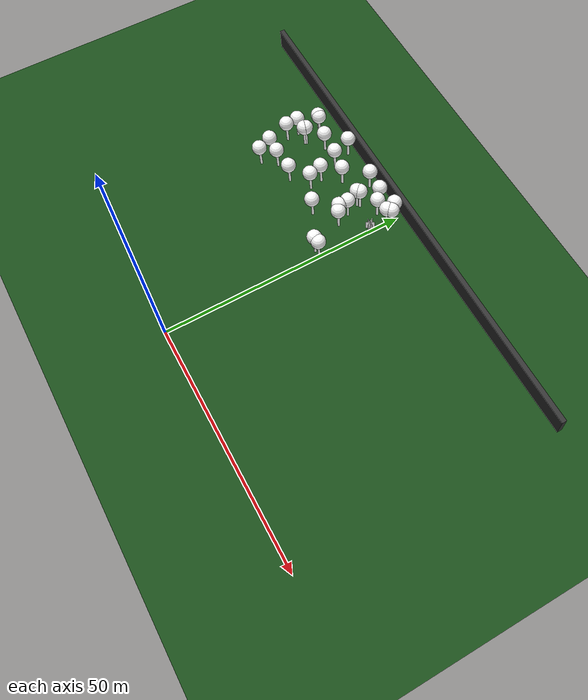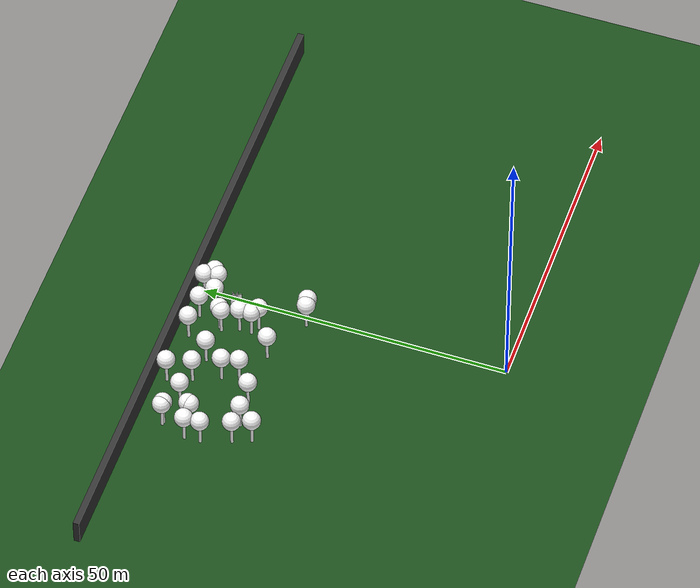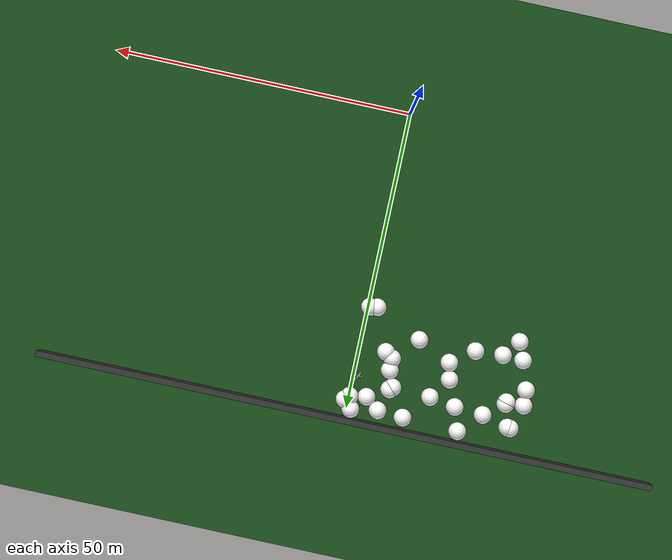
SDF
<sdf version="1.8">
 <world name="forest_world">
  <model name="fire_17">
   <pose>-0.82 44.38 1.00 0 0 0.00</pose>
   <static>true</static>
   <link name="fire_link">
    <visual name="fire_17_fire_main_0">
     <geometry><box><size>1.80 0.10 2.00</size></box></geometry>
     <material>
      <ambient>0.7 0.35 0.0 1</ambient>
      <diffuse>1 1 1 1</diffuse>
      <specular>0 0 0 1</specular>
      <emissive>0 0 0 1</emissive>
      <pbr>
       <metal><albedo_map>textures/fire.png</albedo_map><metalness>0.0</metalness><roughness>0.6</roughness></metal>
      </pbr>
     </material>
     <transparency>0.0</transparency>
     <cast_shadows>false</cast_shadows>
    </visual>
    <visual name="fire_17_fire_60_1">
     <pose>0.00 0.00 0.10 0 0 1.05</pose>
     <geometry><box><size>1.80 0.10 2.00</size></box></geometry>
     <material>
      <ambient>0.7 0.35 0.0 1</ambient>
      <diffuse>1 1 1 1</diffuse>
      <specular>0 0 0 1</specular>
      <emissive>0 0 0 1</emissive>
      <pbr>
       <metal><albedo_map>textures/fire.png</albedo_map><metalness>0.0</metalness><roughness>0.6</roughness></metal>
      </pbr>
     </material>
     <transparency>0.0</transparency>
     <cast_shadows>false</cast_shadows>
    </visual>
    <visual name="fire_17_fire_120_2">
     <pose>0.00 0.00 0.20 0 0 2.09</pose>
     <geometry><box><size>1.80 0.10 2.00</size></box></geometry>
     <material>
      <ambient>0.7 0.35 0.0 1</ambient>
      <diffuse>1 1 1 1</diffuse>
      <specular>0 0 0 1</specular>
      <emissive>0 0 0 1</emissive>
      <pbr>
       <metal><albedo_map>textures/fire.png</albedo_map><metalness>0.0</metalness><roughness>0.6</roughness></metal>
      </pbr>
     </material>
     <transparency>0.0</transparency>
     <cast_shadows>false</cast_shadows>
    </visual>
    <light type="point" name="fire_17_light_0">
     <pose>0.40 0.00 0.50 0 0 0</pose>
     <diffuse>1.0 0.7 0.3 1</diffuse>
     <specular>1.0 0.8 0.3 1</specular>
     <intensity>2</intensity>
     <attenuation>
      <range>2</range>
      <constant>0.1</constant>
      <linear>0.05</linear>
      <quadratic>0.02</quadratic>
     </attenuation>
     <cast_shadows>false</cast_shadows>
    </light>
    <light type="point" name="fire_17_light_1">
     <pose>-0.20 0.35 0.50 0 0 0</pose>
     <diffuse>1.0 0.7 0.3 1</diffuse>
     <specular>1.0 0.8 0.3 1</specular>
     <intensity>2</intensity>
     <attenuation>
      <range>2</range>
      <constant>0.1</constant>
      <linear>0.05</linear>
      <quadratic>0.02</quadratic>
     </attenuation>
     <cast_shadows>false</cast_shadows>
    </light>
    <light type="point" name="fire_17_light_2">
     <pose>-0.20 -0.35 0.50 0 0 0</pose>
     <diffuse>1.0 0.7 0.3 1</diffuse>
     <specular>1.0 0.8 0.3 1</specular>
     <intensity>2</intensity>
     <attenuation>
      <range>2</range>
      <constant>0.1</constant>
      <linear>0.05</linear>
      <quadratic>0.02</quadratic>
     </attenuation>
     <cast_shadows>false</cast_shadows>
    </light>
   </link>
   <plugin filename="libignition-gazebo-pose-publisher-system.so" name="ignition::gazebo::systems::PosePublisher">
    <frame_id>world</frame_id>
    <publish_link_pose>true</publish_link_pose>
    <use_pose_vector_msg>true</use_pose_vector_msg>
    <static_publisher>true</static_publisher>
    <static_update_frequency>1</static_update_frequency>
   </plugin>
  </model>
  <model name="tree_simple483">
   <static>1</static>
   <link name="link">
    <pose>0 0 0.1 0 -0 0</pose>
    <collision name="collision_trunk">
     <pose>0 0 2 0 -0 0</pose>
     <geometry><cylinder><radius>0.25</radius><length>4</length></cylinder></geometry>
    </collision>
    <collision name="collision_treetop">
     <pose>0 0 5.2 0 -0 0</pose>
     <geometry><sphere><radius>1.5</radius></sphere></geometry>
    </collision>
    <visual name="trunk">
     <pose>0 0 2 0 -0 0</pose>
     <geometry><cylinder><radius>0.25</radius><length>4</length></cylinder></geometry>
     <material>
      <ambient>0.5 0.5 0.5 1</ambient>
      <diffuse>1.0 1.0 1.0 1</diffuse>
      <specular>0.0 0.0 0.0 1</specular>
      <pbr>
       <metal>
        <albedo_map>../worlds/textures/tree_simple_trunk.jpg</albedo_map>
        <metalness>0.0</metalness>
        <roughness>0.8</roughness>
       </metal>
      </pbr>
     </material>
    </visual>
    <visual name="treetop">
     <pose>0 0 5.2 0 -0 0</pose>
     <geometry><sphere><radius>1.5</radius></sphere></geometry>
     <material>
      <ambient>0.5 0.5 0.5 1</ambient>
      <diffuse>1.0 1.0 1.0 1</diffuse>
      <specular>0.0 0.0 0.0 1</specular>
      <pbr>
       <metal>
        <albedo_map>../worlds/textures/tree_simple_treetop.jpg</albedo_map>
        <metalness>0.0</metalness>
        <roughness>0.9</roughness>
       </metal>
      </pbr>
     </material>
    </visual>
   </link>
   <pose>-6.65162129766 44.7613363002 0 0 -0 0</pose>
  </model>
  <model name="tree_simple477">
   <static>1</static>
   <link name="link">
    <pose>0 0 0.1 0 -0 0</pose>
    <collision name="collision_trunk">
     <pose>0 0 2 0 -0 0</pose>
     <geometry><cylinder><radius>0.25</radius><length>4</length></cylinder></geometry>
    </collision>
    <collision name="collision_treetop">
     <pose>0 0 5.2 0 -0 0</pose>
     <geometry><sphere><radius>1.5</radius></sphere></geometry>
    </collision>
    <visual name="trunk">
     <pose>0 0 2 0 -0 0</pose>
     <geometry><cylinder><radius>0.25</radius><length>4</length></cylinder></geometry>
     <material>
      <ambient>0.5 0.5 0.5 1</ambient>
      <diffuse>1.0 1.0 1.0 1</diffuse>
      <specular>0.0 0.0 0.0 1</specular>
      <pbr>
       <metal>
        <albedo_map>../worlds/textures/tree_simple_trunk.jpg</albedo_map>
        <metalness>0.0</metalness>
        <roughness>0.8</roughness>
       </metal>
      </pbr>
     </material>
    </visual>
    <visual name="treetop">
     <pose>0 0 5.2 0 -0 0</pose>
     <geometry><sphere><radius>1.5</radius></sphere></geometry>
     <material>
      <ambient>0.5 0.5 0.5 1</ambient>
      <diffuse>1.0 1.0 1.0 1</diffuse>
      <specular>0.0 0.0 0.0 1</specular>
      <pbr>
       <metal>
        <albedo_map>../worlds/textures/tree_simple_treetop.jpg</albedo_map>
        <metalness>0.0</metalness>
        <roughness>0.9</roughness>
       </metal>
      </pbr>
     </material>
    </visual>
   </link>
   <pose>-0.22927085135 32.6495918535 0 0 -0 0</pose>
  </model>
  <model name="tree_simple446">
   <static>1</static>
   <link name="link">
    <pose>0 0 0.1 0 -0 0</pose>
    <collision name="collision_trunk">
     <pose>0 0 2 0 -0 0</pose>
     <geometry><cylinder><radius>0.25</radius><length>4</length></cylinder></geometry>
    </collision>
    <collision name="collision_treetop">
     <pose>0 0 5.2 0 -0 0</pose>
     <geometry><sphere><radius>1.5</radius></sphere></geometry>
    </collision>
    <visual name="trunk">
     <pose>0 0 2 0 -0 0</pose>
     <geometry><cylinder><radius>0.25</radius><length>4</length></cylinder></geometry>
     <material>
      <ambient>0.5 0.5 0.5 1</ambient>
      <diffuse>1.0 1.0 1.0 1</diffuse>
      <specular>0.0 0.0 0.0 1</specular>
      <pbr>
       <metal>
        <albedo_map>../worlds/textures/tree_simple_trunk.jpg</albedo_map>
        <metalness>0.0</metalness>
        <roughness>0.8</roughness>
       </metal>
      </pbr>
     </material>
    </visual>
    <visual name="treetop">
     <pose>0 0 5.2 0 -0 0</pose>
     <geometry><sphere><radius>1.5</radius></sphere></geometry>
     <material>
      <ambient>0.5 0.5 0.5 1</ambient>
      <diffuse>1.0 1.0 1.0 1</diffuse>
      <specular>0.0 0.0 0.0 1</specular>
      <pbr>
       <metal>
        <albedo_map>../worlds/textures/tree_simple_treetop.jpg</albedo_map>
        <metalness>0.0</metalness>
        <roughness>0.9</roughness>
       </metal>
      </pbr>
     </material>
    </visual>
   </link>
   <pose>-14.8873591434 38.8088683427 0 0 -0 0</pose>
  </model>
  <model name="tree_simple441">
   <static>1</static>
   <link name="link">
    <pose>0 0 0.1 0 -0 0</pose>
    <collision name="collision_trunk">
     <pose>0 0 2 0 -0 0</pose>
     <geometry><cylinder><radius>0.25</radius><length>4</length></cylinder></geometry>
    </collision>
    <collision name="collision_treetop">
     <pose>0 0 5.2 0 -0 0</pose>
     <geometry><sphere><radius>1.5</radius></sphere></geometry>
    </collision>
    <visual name="trunk">
     <pose>0 0 2 0 -0 0</pose>
     <geometry><cylinder><radius>0.25</radius><length>4</length></cylinder></geometry>
     <material>
      <ambient>0.5 0.5 0.5 1</ambient>
      <diffuse>1.0 1.0 1.0 1</diffuse>
      <specular>0.0 0.0 0.0 1</specular>
      <pbr>
       <metal>
        <albedo_map>../worlds/textures/tree_simple_trunk.jpg</albedo_map>
        <metalness>0.0</metalness>
        <roughness>0.8</roughness>
       </metal>
      </pbr>
     </material>
    </visual>
    <visual name="treetop">
     <pose>0 0 5.2 0 -0 0</pose>
     <geometry><sphere><radius>1.5</radius></sphere></geometry>
     <material>
      <ambient>0.5 0.5 0.5 1</ambient>
      <diffuse>1.0 1.0 1.0 1</diffuse>
      <specular>0.0 0.0 0.0 1</specular>
      <pbr>
       <metal>
        <albedo_map>../worlds/textures/tree_simple_treetop.jpg</albedo_map>
        <metalness>0.0</metalness>
        <roughness>0.9</roughness>
       </metal>
      </pbr>
     </material>
    </visual>
   </link>
   <pose>-25.4258718868 33.0017159702 0 0 -0 0</pose>
  </model>
  <model name="tree_simple436">
   <static>1</static>
   <link name="link">
    <pose>0 0 0.1 0 -0 0</pose>
    <collision name="collision_trunk">
     <pose>0 0 2 0 -0 0</pose>
     <geometry><cylinder><radius>0.25</radius><length>4</length></cylinder></geometry>
    </collision>
    <collision name="collision_treetop">
     <pose>0 0 5.2 0 -0 0</pose>
     <geometry><sphere><radius>1.5</radius></sphere></geometry>
    </collision>
    <visual name="trunk">
     <pose>0 0 2 0 -0 0</pose>
     <geometry><cylinder><radius>0.25</radius><length>4</length></cylinder></geometry>
     <material>
      <ambient>0.5 0.5 0.5 1</ambient>
      <diffuse>1.0 1.0 1.0 1</diffuse>
      <specular>0.0 0.0 0.0 1</specular>
      <pbr>
       <metal>
        <albedo_map>../worlds/textures/tree_simple_trunk.jpg</albedo_map>
        <metalness>0.0</metalness>
        <roughness>0.8</roughness>
       </metal>
      </pbr>
     </material>
    </visual>
    <visual name="treetop">
     <pose>0 0 5.2 0 -0 0</pose>
     <geometry><sphere><radius>1.5</radius></sphere></geometry>
     <material>
      <ambient>0.5 0.5 0.5 1</ambient>
      <diffuse>1.0 1.0 1.0 1</diffuse>
      <specular>0.0 0.0 0.0 1</specular>
      <pbr>
       <metal>
        <albedo_map>../worlds/textures/tree_simple_treetop.jpg</albedo_map>
        <metalness>0.0</metalness>
        <roughness>0.9</roughness>
       </metal>
      </pbr>
     </material>
    </visual>
   </link>
   <pose>-12.9773602363 44.9895309953 0 0 -0 0</pose>
  </model>
  <model name="tree_simple425">
   <static>1</static>
   <link name="link">
    <pose>0 0 0.1 0 -0 0</pose>
    <collision name="collision_trunk">
     <pose>0 0 2 0 -0 0</pose>
     <geometry><cylinder><radius>0.25</radius><length>4</length></cylinder></geometry>
    </collision>
    <collision name="collision_treetop">
     <pose>0 0 5.2 0 -0 0</pose>
     <geometry><sphere><radius>1.5</radius></sphere></geometry>
    </collision>
    <visual name="trunk">
     <pose>0 0 2 0 -0 0</pose>
     <geometry><cylinder><radius>0.25</radius><length>4</length></cylinder></geometry>
     <material>
      <ambient>0.5 0.5 0.5 1</ambient>
      <diffuse>1.0 1.0 1.0 1</diffuse>
      <specular>0.0 0.0 0.0 1</specular>
      <pbr>
       <metal>
        <albedo_map>../worlds/textures/tree_simple_trunk.jpg</albedo_map>
        <metalness>0.0</metalness>
        <roughness>0.8</roughness>
       </metal>
      </pbr>
     </material>
    </visual>
    <visual name="treetop">
     <pose>0 0 5.2 0 -0 0</pose>
     <geometry><sphere><radius>1.5</radius></sphere></geometry>
     <material>
      <ambient>0.5 0.5 0.5 1</ambient>
      <diffuse>1.0 1.0 1.0 1</diffuse>
      <specular>0.0 0.0 0.0 1</specular>
      <pbr>
       <metal>
        <albedo_map>../worlds/textures/tree_simple_treetop.jpg</albedo_map>
        <metalness>0.0</metalness>
        <roughness>0.9</roughness>
       </metal>
      </pbr>
     </material>
    </visual>
   </link>
   <pose>-9.294152574 36.1907172759 0 0 -0 0</pose>
  </model>
  <model name="tree_simple409">
   <static>1</static>
   <link name="link">
    <pose>0 0 0.1 0 -0 0</pose>
    <collision name="collision_trunk">
     <pose>0 0 2 0 -0 0</pose>
     <geometry><cylinder><radius>0.25</radius><length>4</length></cylinder></geometry>
    </collision>
    <collision name="collision_treetop">
     <pose>0 0 5.2 0 -0 0</pose>
     <geometry><sphere><radius>1.5</radius></sphere></geometry>
    </collision>
    <visual name="trunk">
     <pose>0 0 2 0 -0 0</pose>
     <geometry><cylinder><radius>0.25</radius><length>4</length></cylinder></geometry>
     <material>
      <ambient>0.5 0.5 0.5 1</ambient>
      <diffuse>1.0 1.0 1.0 1</diffuse>
      <specular>0.0 0.0 0.0 1</specular>
      <pbr>
       <metal>
        <albedo_map>../worlds/textures/tree_simple_trunk.jpg</albedo_map>
        <metalness>0.0</metalness>
        <roughness>0.8</roughness>
       </metal>
      </pbr>
     </material>
    </visual>
    <visual name="treetop">
     <pose>0 0 5.2 0 -0 0</pose>
     <geometry><sphere><radius>1.5</radius></sphere></geometry>
     <material>
      <ambient>0.5 0.5 0.5 1</ambient>
      <diffuse>1.0 1.0 1.0 1</diffuse>
      <specular>0.0 0.0 0.0 1</specular>
      <pbr>
       <metal>
        <albedo_map>../worlds/textures/tree_simple_treetop.jpg</albedo_map>
        <metalness>0.0</metalness>
        <roughness>0.9</roughness>
       </metal>
      </pbr>
     </material>
    </visual>
   </link>
   <pose>-23.2045481925 35.7189479207 0 0 -0 0</pose>
  </model>
  <model name="tree_simple358">
   <static>1</static>
   <link name="link">
    <pose>0 0 0.1 0 -0 0</pose>
    <collision name="collision_trunk">
     <pose>0 0 2 0 -0 0</pose>
     <geometry><cylinder><radius>0.25</radius><length>4</length></cylinder></geometry>
    </collision>
    <collision name="collision_treetop">
     <pose>0 0 5.2 0 -0 0</pose>
     <geometry><sphere><radius>1.5</radius></sphere></geometry>
    </collision>
    <visual name="trunk">
     <pose>0 0 2 0 -0 0</pose>
     <geometry><cylinder><radius>0.25</radius><length>4</length></cylinder></geometry>
     <material>
      <ambient>0.5 0.5 0.5 1</ambient>
      <diffuse>1.0 1.0 1.0 1</diffuse>
      <specular>0.0 0.0 0.0 1</specular>
      <pbr>
       <metal>
        <albedo_map>../worlds/textures/tree_simple_trunk.jpg</albedo_map>
        <metalness>0.0</metalness>
        <roughness>0.8</roughness>
       </metal>
      </pbr>
     </material>
    </visual>
    <visual name="treetop">
     <pose>0 0 5.2 0 -0 0</pose>
     <geometry><sphere><radius>1.5</radius></sphere></geometry>
     <material>
      <ambient>0.5 0.5 0.5 1</ambient>
      <diffuse>1.0 1.0 1.0 1</diffuse>
      <specular>0.0 0.0 0.0 1</specular>
      <pbr>
       <metal>
        <albedo_map>../worlds/textures/tree_simple_treetop.jpg</albedo_map>
        <metalness>0.0</metalness>
        <roughness>0.9</roughness>
       </metal>
      </pbr>
     </material>
    </visual>
   </link>
   <pose>-28.1059387966 40.529489556 0 0 -0 0</pose>
  </model>
  <model name="tree_simple356">
   <static>1</static>
   <link name="link">
    <pose>0 0 0.1 0 -0 0</pose>
    <collision name="collision_trunk">
     <pose>0 0 2 0 -0 0</pose>
     <geometry><cylinder><radius>0.25</radius><length>4</length></cylinder></geometry>
    </collision>
    <collision name="collision_treetop">
     <pose>0 0 5.2 0 -0 0</pose>
     <geometry><sphere><radius>1.5</radius></sphere></geometry>
    </collision>
    <visual name="trunk">
     <pose>0 0 2 0 -0 0</pose>
     <geometry><cylinder><radius>0.25</radius><length>4</length></cylinder></geometry>
     <material>
      <ambient>0.5 0.5 0.5 1</ambient>
      <diffuse>1.0 1.0 1.0 1</diffuse>
      <specular>0.0 0.0 0.0 1</specular>
      <pbr>
       <metal>
        <albedo_map>../worlds/textures/tree_simple_trunk.jpg</albedo_map>
        <metalness>0.0</metalness>
        <roughness>0.8</roughness>
       </metal>
      </pbr>
     </material>
    </visual>
    <visual name="treetop">
     <pose>0 0 5.2 0 -0 0</pose>
     <geometry><sphere><radius>1.5</radius></sphere></geometry>
     <material>
      <ambient>0.5 0.5 0.5 1</ambient>
      <diffuse>1.0 1.0 1.0 1</diffuse>
      <specular>0.0 0.0 0.0 1</specular>
      <pbr>
       <metal>
        <albedo_map>../worlds/textures/tree_simple_treetop.jpg</albedo_map>
        <metalness>0.0</metalness>
        <roughness>0.9</roughness>
       </metal>
      </pbr>
     </material>
    </visual>
   </link>
   <pose>-2.83030100633 47.164879459 0 0 -0 0</pose>
  </model>
  <model name="tree_simple343">
   <static>1</static>
   <link name="link">
    <pose>0 0 0.1 0 -0 0</pose>
    <collision name="collision_trunk">
     <pose>0 0 2 0 -0 0</pose>
     <geometry><cylinder><radius>0.25</radius><length>4</length></cylinder></geometry>
    </collision>
    <collision name="collision_treetop">
     <pose>0 0 5.2 0 -0 0</pose>
     <geometry><sphere><radius>1.5</radius></sphere></geometry>
    </collision>
    <visual name="trunk">
     <pose>0 0 2 0 -0 0</pose>
     <geometry><cylinder><radius>0.25</radius><length>4</length></cylinder></geometry>
     <material>
      <ambient>0.5 0.5 0.5 1</ambient>
      <diffuse>1.0 1.0 1.0 1</diffuse>
      <specular>0.0 0.0 0.0 1</specular>
      <pbr>
       <metal>
        <albedo_map>../worlds/textures/tree_simple_trunk.jpg</albedo_map>
        <metalness>0.0</metalness>
        <roughness>0.8</roughness>
       </metal>
      </pbr>
     </material>
    </visual>
    <visual name="treetop">
     <pose>0 0 5.2 0 -0 0</pose>
     <geometry><sphere><radius>1.5</radius></sphere></geometry>
     <material>
      <ambient>0.5 0.5 0.5 1</ambient>
      <diffuse>1.0 1.0 1.0 1</diffuse>
      <specular>0.0 0.0 0.0 1</specular>
      <pbr>
       <metal>
        <albedo_map>../worlds/textures/tree_simple_treetop.jpg</albedo_map>
        <metalness>0.0</metalness>
        <roughness>0.9</roughness>
       </metal>
      </pbr>
     </material>
    </visual>
   </link>
   <pose>-17.2958932822 45.7138384605 0 0 -0 0</pose>
  </model>
  <model name="tree_simple342">
   <static>1</static>
   <link name="link">
    <pose>0 0 0.1 0 -0 0</pose>
    <collision name="collision_trunk">
     <pose>0 0 2 0 -0 0</pose>
     <geometry><cylinder><radius>0.25</radius><length>4</length></cylinder></geometry>
    </collision>
    <collision name="collision_treetop">
     <pose>0 0 5.2 0 -0 0</pose>
     <geometry><sphere><radius>1.5</radius></sphere></geometry>
    </collision>
    <visual name="trunk">
     <pose>0 0 2 0 -0 0</pose>
     <geometry><cylinder><radius>0.25</radius><length>4</length></cylinder></geometry>
     <material>
      <ambient>0.5 0.5 0.5 1</ambient>
      <diffuse>1.0 1.0 1.0 1</diffuse>
      <specular>0.0 0.0 0.0 1</specular>
      <pbr>
       <metal>
        <albedo_map>../worlds/textures/tree_simple_trunk.jpg</albedo_map>
        <metalness>0.0</metalness>
        <roughness>0.8</roughness>
       </metal>
      </pbr>
     </material>
    </visual>
    <visual name="treetop">
     <pose>0 0 5.2 0 -0 0</pose>
     <geometry><sphere><radius>1.5</radius></sphere></geometry>
     <material>
      <ambient>0.5 0.5 0.5 1</ambient>
      <diffuse>1.0 1.0 1.0 1</diffuse>
      <specular>0.0 0.0 0.0 1</specular>
      <pbr>
       <metal>
        <albedo_map>../worlds/textures/tree_simple_treetop.jpg</albedo_map>
        <metalness>0.0</metalness>
        <roughness>0.9</roughness>
       </metal>
      </pbr>
     </material>
    </visual>
   </link>
   <pose>-22.0369501139 46.0033918911 0 0 -0 0</pose>
  </model>
  <model name="tree_simple307">
   <static>1</static>
   <link name="link">
    <pose>0 0 0.1 0 -0 0</pose>
    <collision name="collision_trunk">
     <pose>0 0 2 0 -0 0</pose>
     <geometry><cylinder><radius>0.25</radius><length>4</length></cylinder></geometry>
    </collision>
    <collision name="collision_treetop">
     <pose>0 0 5.2 0 -0 0</pose>
     <geometry><sphere><radius>1.5</radius></sphere></geometry>
    </collision>
    <visual name="trunk">
     <pose>0 0 2 0 -0 0</pose>
     <geometry><cylinder><radius>0.25</radius><length>4</length></cylinder></geometry>
     <material>
      <ambient>0.5 0.5 0.5 1</ambient>
      <diffuse>1.0 1.0 1.0 1</diffuse>
      <specular>0.0 0.0 0.0 1</specular>
      <pbr>
       <metal>
        <albedo_map>../worlds/textures/tree_simple_trunk.jpg</albedo_map>
        <metalness>0.0</metalness>
        <roughness>0.8</roughness>
       </metal>
      </pbr>
     </material>
    </visual>
    <visual name="treetop">
     <pose>0 0 5.2 0 -0 0</pose>
     <geometry><sphere><radius>1.5</radius></sphere></geometry>
     <material>
      <ambient>0.5 0.5 0.5 1</ambient>
      <diffuse>1.0 1.0 1.0 1</diffuse>
      <specular>0.0 0.0 0.0 1</specular>
      <pbr>
       <metal>
        <albedo_map>../worlds/textures/tree_simple_treetop.jpg</albedo_map>
        <metalness>0.0</metalness>
        <roughness>0.9</roughness>
       </metal>
      </pbr>
     </material>
    </visual>
   </link>
   <pose>-25.3992623196 43.1282745175 0 0 -0 0</pose>
  </model>
  <model name="tree_simple302">
   <static>1</static>
   <link name="link">
    <pose>0 0 0.1 0 -0 0</pose>
    <collision name="collision_trunk">
     <pose>0 0 2 0 -0 0</pose>
     <geometry><cylinder><radius>0.25</radius><length>4</length></cylinder></geometry>
    </collision>
    <collision name="collision_treetop">
     <pose>0 0 5.2 0 -0 0</pose>
     <geometry><sphere><radius>1.5</radius></sphere></geometry>
    </collision>
    <visual name="trunk">
     <pose>0 0 2 0 -0 0</pose>
     <geometry><cylinder><radius>0.25</radius><length>4</length></cylinder></geometry>
     <material>
      <ambient>0.5 0.5 0.5 1</ambient>
      <diffuse>1.0 1.0 1.0 1</diffuse>
      <specular>0.0 0.0 0.0 1</specular>
      <pbr>
       <metal>
        <albedo_map>../worlds/textures/tree_simple_trunk.jpg</albedo_map>
        <metalness>0.0</metalness>
        <roughness>0.8</roughness>
       </metal>
      </pbr>
     </material>
    </visual>
    <visual name="treetop">
     <pose>0 0 5.2 0 -0 0</pose>
     <geometry><sphere><radius>1.5</radius></sphere></geometry>
     <material>
      <ambient>0.5 0.5 0.5 1</ambient>
      <diffuse>1.0 1.0 1.0 1</diffuse>
      <specular>0.0 0.0 0.0 1</specular>
      <pbr>
       <metal>
        <albedo_map>../worlds/textures/tree_simple_treetop.jpg</albedo_map>
        <metalness>0.0</metalness>
        <roughness>0.9</roughness>
       </metal>
      </pbr>
     </material>
    </visual>
   </link>
   <pose>-4.36833306423 39.3035065939 0 0 -0 0</pose>
  </model>
  <model name="tree_simple299">
   <static>1</static>
   <link name="link">
    <pose>0 0 0.1 0 -0 0</pose>
    <collision name="collision_trunk">
     <pose>0 0 2 0 -0 0</pose>
     <geometry><cylinder><radius>0.25</radius><length>4</length></cylinder></geometry>
    </collision>
    <collision name="collision_treetop">
     <pose>0 0 5.2 0 -0 0</pose>
     <geometry><sphere><radius>1.5</radius></sphere></geometry>
    </collision>
    <visual name="trunk">
     <pose>0 0 2 0 -0 0</pose>
     <geometry><cylinder><radius>0.25</radius><length>4</length></cylinder></geometry>
     <material>
      <ambient>0.5 0.5 0.5 1</ambient>
      <diffuse>1.0 1.0 1.0 1</diffuse>
      <specular>0.0 0.0 0.0 1</specular>
      <pbr>
       <metal>
        <albedo_map>../worlds/textures/tree_simple_trunk.jpg</albedo_map>
        <metalness>0.0</metalness>
        <roughness>0.8</roughness>
       </metal>
      </pbr>
     </material>
    </visual>
    <visual name="treetop">
     <pose>0 0 5.2 0 -0 0</pose>
     <geometry><sphere><radius>1.5</radius></sphere></geometry>
     <material>
      <ambient>0.5 0.5 0.5 1</ambient>
      <diffuse>1.0 1.0 1.0 1</diffuse>
      <specular>0.0 0.0 0.0 1</specular>
      <pbr>
       <metal>
        <albedo_map>../worlds/textures/tree_simple_treetop.jpg</albedo_map>
        <metalness>0.0</metalness>
        <roughness>0.9</roughness>
       </metal>
      </pbr>
     </material>
    </visual>
   </link>
   <pose>-1.46806320409 32.459422197 0 0 -0 0</pose>
  </model>
  <model name="tree_simple273">
   <static>1</static>
   <link name="link">
    <pose>0 0 0.1 0 -0 0</pose>
    <collision name="collision_trunk">
     <pose>0 0 2 0 -0 0</pose>
     <geometry><cylinder><radius>0.25</radius><length>4</length></cylinder></geometry>
    </collision>
    <collision name="collision_treetop">
     <pose>0 0 5.2 0 -0 0</pose>
     <geometry><sphere><radius>1.5</radius></sphere></geometry>
    </collision>
    <visual name="trunk">
     <pose>0 0 2 0 -0 0</pose>
     <geometry><cylinder><radius>0.25</radius><length>4</length></cylinder></geometry>
     <material>
      <ambient>0.5 0.5 0.5 1</ambient>
      <diffuse>1.0 1.0 1.0 1</diffuse>
      <specular>0.0 0.0 0.0 1</specular>
      <pbr>
       <metal>
        <albedo_map>../worlds/textures/tree_simple_trunk.jpg</albedo_map>
        <metalness>0.0</metalness>
        <roughness>0.8</roughness>
       </metal>
      </pbr>
     </material>
    </visual>
    <visual name="treetop">
     <pose>0 0 5.2 0 -0 0</pose>
     <geometry><sphere><radius>1.5</radius></sphere></geometry>
     <material>
      <ambient>0.5 0.5 0.5 1</ambient>
      <diffuse>1.0 1.0 1.0 1</diffuse>
      <specular>0.0 0.0 0.0 1</specular>
      <pbr>
       <metal>
        <albedo_map>../worlds/textures/tree_simple_treetop.jpg</albedo_map>
        <metalness>0.0</metalness>
        <roughness>0.9</roughness>
       </metal>
      </pbr>
     </material>
    </visual>
   </link>
   <pose>0.615452914857 48.3188405116 0 0 -0 0</pose>
  </model>
  <model name="tree_simple271">
   <static>1</static>
   <link name="link">
    <pose>0 0 0.1 0 -0 0</pose>
    <collision name="collision_trunk">
     <pose>0 0 2 0 -0 0</pose>
     <geometry><cylinder><radius>0.25</radius><length>4</length></cylinder></geometry>
    </collision>
    <collision name="collision_treetop">
     <pose>0 0 5.2 0 -0 0</pose>
     <geometry><sphere><radius>1.5</radius></sphere></geometry>
    </collision>
    <visual name="trunk">
     <pose>0 0 2 0 -0 0</pose>
     <geometry><cylinder><radius>0.25</radius><length>4</length></cylinder></geometry>
     <material>
      <ambient>0.5 0.5 0.5 1</ambient>
      <diffuse>1.0 1.0 1.0 1</diffuse>
      <specular>0.0 0.0 0.0 1</specular>
      <pbr>
       <metal>
        <albedo_map>../worlds/textures/tree_simple_trunk.jpg</albedo_map>
        <metalness>0.0</metalness>
        <roughness>0.8</roughness>
       </metal>
      </pbr>
     </material>
    </visual>
    <visual name="treetop">
     <pose>0 0 5.2 0 -0 0</pose>
     <geometry><sphere><radius>1.5</radius></sphere></geometry>
     <material>
      <ambient>0.5 0.5 0.5 1</ambient>
      <diffuse>1.0 1.0 1.0 1</diffuse>
      <specular>0.0 0.0 0.0 1</specular>
      <pbr>
       <metal>
        <albedo_map>../worlds/textures/tree_simple_treetop.jpg</albedo_map>
        <metalness>0.0</metalness>
        <roughness>0.9</roughness>
       </metal>
      </pbr>
     </material>
    </visual>
   </link>
   <pose>-18.5426783436 49.4999190652 0 0 -0 0</pose>
  </model>
  <model name="tree_simple264">
   <static>1</static>
   <link name="link">
    <pose>0 0 0.1 0 -0 0</pose>
    <collision name="collision_trunk">
     <pose>0 0 2 0 -0 0</pose>
     <geometry><cylinder><radius>0.25</radius><length>4</length></cylinder></geometry>
    </collision>
    <collision name="collision_treetop">
     <pose>0 0 5.2 0 -0 0</pose>
     <geometry><sphere><radius>1.5</radius></sphere></geometry>
    </collision>
    <visual name="trunk">
     <pose>0 0 2 0 -0 0</pose>
     <geometry><cylinder><radius>0.25</radius><length>4</length></cylinder></geometry>
     <material>
      <ambient>0.5 0.5 0.5 1</ambient>
      <diffuse>1.0 1.0 1.0 1</diffuse>
      <specular>0.0 0.0 0.0 1</specular>
      <pbr>
       <metal>
        <albedo_map>../worlds/textures/tree_simple_trunk.jpg</albedo_map>
        <metalness>0.0</metalness>
        <roughness>0.8</roughness>
       </metal>
      </pbr>
     </material>
    </visual>
    <visual name="treetop">
     <pose>0 0 5.2 0 -0 0</pose>
     <geometry><sphere><radius>1.5</radius></sphere></geometry>
     <material>
      <ambient>0.5 0.5 0.5 1</ambient>
      <diffuse>1.0 1.0 1.0 1</diffuse>
      <specular>0.0 0.0 0.0 1</specular>
      <pbr>
       <metal>
        <albedo_map>../worlds/textures/tree_simple_treetop.jpg</albedo_map>
        <metalness>0.0</metalness>
        <roughness>0.9</roughness>
       </metal>
      </pbr>
     </material>
    </visual>
   </link>
   <pose>-26.5960769864 35.8751081016 0 0 -0 0</pose>
  </model>
  <model name="tree_simple248">
   <static>1</static>
   <link name="link">
    <pose>0 0 0.1 0 -0 0</pose>
    <collision name="collision_trunk">
     <pose>0 0 2 0 -0 0</pose>
     <geometry><cylinder><radius>0.25</radius><length>4</length></cylinder></geometry>
    </collision>
    <collision name="collision_treetop">
     <pose>0 0 5.2 0 -0 0</pose>
     <geometry><sphere><radius>1.5</radius></sphere></geometry>
    </collision>
    <visual name="trunk">
     <pose>0 0 2 0 -0 0</pose>
     <geometry><cylinder><radius>0.25</radius><length>4</length></cylinder></geometry>
     <material>
      <ambient>0.5 0.5 0.5 1</ambient>
      <diffuse>1.0 1.0 1.0 1</diffuse>
      <specular>0.0 0.0 0.0 1</specular>
      <pbr>
       <metal>
        <albedo_map>../worlds/textures/tree_simple_trunk.jpg</albedo_map>
        <metalness>0.0</metalness>
        <roughness>0.8</roughness>
       </metal>
      </pbr>
     </material>
    </visual>
    <visual name="treetop">
     <pose>0 0 5.2 0 -0 0</pose>
     <geometry><sphere><radius>1.5</radius></sphere></geometry>
     <material>
      <ambient>0.5 0.5 0.5 1</ambient>
      <diffuse>1.0 1.0 1.0 1</diffuse>
      <specular>0.0 0.0 0.0 1</specular>
      <pbr>
       <metal>
        <albedo_map>../worlds/textures/tree_simple_treetop.jpg</albedo_map>
        <metalness>0.0</metalness>
        <roughness>0.9</roughness>
       </metal>
      </pbr>
     </material>
    </visual>
   </link>
   <pose>-9.31615496508 49.2286778513 0 0 -0 0</pose>
  </model>
  <model name="tree_simple236">
   <static>1</static>
   <link name="link">
    <pose>0 0 0.1 0 -0 0</pose>
    <collision name="collision_trunk">
     <pose>0 0 2 0 -0 0</pose>
     <geometry><cylinder><radius>0.25</radius><length>4</length></cylinder></geometry>
    </collision>
    <collision name="collision_treetop">
     <pose>0 0 5.2 0 -0 0</pose>
     <geometry><sphere><radius>1.5</radius></sphere></geometry>
    </collision>
    <visual name="trunk">
     <pose>0 0 2 0 -0 0</pose>
     <geometry><cylinder><radius>0.25</radius><length>4</length></cylinder></geometry>
     <material>
      <ambient>0.5 0.5 0.5 1</ambient>
      <diffuse>1.0 1.0 1.0 1</diffuse>
      <specular>0.0 0.0 0.0 1</specular>
      <pbr>
       <metal>
        <albedo_map>../worlds/textures/tree_simple_trunk.jpg</albedo_map>
        <metalness>0.0</metalness>
        <roughness>0.8</roughness>
       </metal>
      </pbr>
     </material>
    </visual>
    <visual name="treetop">
     <pose>0 0 5.2 0 -0 0</pose>
     <geometry><sphere><radius>1.5</radius></sphere></geometry>
     <material>
      <ambient>0.5 0.5 0.5 1</ambient>
      <diffuse>1.0 1.0 1.0 1</diffuse>
      <specular>0.0 0.0 0.0 1</specular>
      <pbr>
       <metal>
        <albedo_map>../worlds/textures/tree_simple_treetop.jpg</albedo_map>
        <metalness>0.0</metalness>
        <roughness>0.9</roughness>
       </metal>
      </pbr>
     </material>
    </visual>
   </link>
   <pose>-28.2556560036 43.088579588 0 0 -0 0</pose>
  </model>
  <model name="tree_simple224">
   <static>1</static>
   <link name="link">
    <pose>0 0 0.1 0 -0 0</pose>
    <collision name="collision_trunk">
     <pose>0 0 2 0 -0 0</pose>
     <geometry><cylinder><radius>0.25</radius><length>4</length></cylinder></geometry>
    </collision>
    <collision name="collision_treetop">
     <pose>0 0 5.2 0 -0 0</pose>
     <geometry><sphere><radius>1.5</radius></sphere></geometry>
    </collision>
    <visual name="trunk">
     <pose>0 0 2 0 -0 0</pose>
     <geometry><cylinder><radius>0.25</radius><length>4</length></cylinder></geometry>
     <material>
      <ambient>0.5 0.5 0.5 1</ambient>
      <diffuse>1.0 1.0 1.0 1</diffuse>
      <specular>0.0 0.0 0.0 1</specular>
      <pbr>
       <metal>
        <albedo_map>../worlds/textures/tree_simple_trunk.jpg</albedo_map>
        <metalness>0.0</metalness>
        <roughness>0.8</roughness>
       </metal>
      </pbr>
     </material>
    </visual>
    <visual name="treetop">
     <pose>0 0 5.2 0 -0 0</pose>
     <geometry><sphere><radius>1.5</radius></sphere></geometry>
     <material>
      <ambient>0.5 0.5 0.5 1</ambient>
      <diffuse>1.0 1.0 1.0 1</diffuse>
      <specular>0.0 0.0 0.0 1</specular>
      <pbr>
       <metal>
        <albedo_map>../worlds/textures/tree_simple_treetop.jpg</albedo_map>
        <metalness>0.0</metalness>
        <roughness>0.9</roughness>
       </metal>
      </pbr>
     </material>
    </visual>
   </link>
   <pose>-25.303745436 43.465040084 0 0 -0 0</pose>
  </model>
  <model name="tree_simple213">
   <static>1</static>
   <link name="link">
    <pose>0 0 0.1 0 -0 0</pose>
    <collision name="collision_trunk">
     <pose>0 0 2 0 -0 0</pose>
     <geometry><cylinder><radius>0.25</radius><length>4</length></cylinder></geometry>
    </collision>
    <collision name="collision_treetop">
     <pose>0 0 5.2 0 -0 0</pose>
     <geometry><sphere><radius>1.5</radius></sphere></geometry>
    </collision>
    <visual name="trunk">
     <pose>0 0 2 0 -0 0</pose>
     <geometry><cylinder><radius>0.25</radius><length>4</length></cylinder></geometry>
     <material>
      <ambient>0.5 0.5 0.5 1</ambient>
      <diffuse>1.0 1.0 1.0 1</diffuse>
      <specular>0.0 0.0 0.0 1</specular>
      <pbr>
       <metal>
        <albedo_map>../worlds/textures/tree_simple_trunk.jpg</albedo_map>
        <metalness>0.0</metalness>
        <roughness>0.8</roughness>
       </metal>
      </pbr>
     </material>
    </visual>
    <visual name="treetop">
     <pose>0 0 5.2 0 -0 0</pose>
     <geometry><sphere><radius>1.5</radius></sphere></geometry>
     <material>
      <ambient>0.5 0.5 0.5 1</ambient>
      <diffuse>1.0 1.0 1.0 1</diffuse>
      <specular>0.0 0.0 0.0 1</specular>
      <pbr>
       <metal>
        <albedo_map>../worlds/textures/tree_simple_treetop.jpg</albedo_map>
        <metalness>0.0</metalness>
        <roughness>0.9</roughness>
       </metal>
      </pbr>
     </material>
    </visual>
   </link>
   <pose>-6.21217405129 45.1783482454 0 0 -0 0</pose>
  </model>
  <model name="tree_simple184">
   <static>1</static>
   <link name="link">
    <pose>0 0 0.1 0 -0 0</pose>
    <collision name="collision_trunk">
     <pose>0 0 2 0 -0 0</pose>
     <geometry><cylinder><radius>0.25</radius><length>4</length></cylinder></geometry>
    </collision>
    <collision name="collision_treetop">
     <pose>0 0 5.2 0 -0 0</pose>
     <geometry><sphere><radius>1.5</radius></sphere></geometry>
    </collision>
    <visual name="trunk">
     <pose>0 0 2 0 -0 0</pose>
     <geometry><cylinder><radius>0.25</radius><length>4</length></cylinder></geometry>
     <material>
      <ambient>0.5 0.5 0.5 1</ambient>
      <diffuse>1.0 1.0 1.0 1</diffuse>
      <specular>0.0 0.0 0.0 1</specular>
      <pbr>
       <metal>
        <albedo_map>../worlds/textures/tree_simple_trunk.jpg</albedo_map>
        <metalness>0.0</metalness>
        <roughness>0.8</roughness>
       </metal>
      </pbr>
     </material>
    </visual>
    <visual name="treetop">
     <pose>0 0 5.2 0 -0 0</pose>
     <geometry><sphere><radius>1.5</radius></sphere></geometry>
     <material>
      <ambient>0.5 0.5 0.5 1</ambient>
      <diffuse>1.0 1.0 1.0 1</diffuse>
      <specular>0.0 0.0 0.0 1</specular>
      <pbr>
       <metal>
        <albedo_map>../worlds/textures/tree_simple_treetop.jpg</albedo_map>
        <metalness>0.0</metalness>
        <roughness>0.9</roughness>
       </metal>
      </pbr>
     </material>
    </visual>
   </link>
   <pose>-0.656302905273 49.6633789535 0 0 -0 0</pose>
  </model>
  <model name="tree_simple161">
   <static>1</static>
   <link name="link">
    <pose>0 0 0.1 0 -0 0</pose>
    <collision name="collision_trunk">
     <pose>0 0 2 0 -0 0</pose>
     <geometry><cylinder><radius>0.25</radius><length>4</length></cylinder></geometry>
    </collision>
    <collision name="collision_treetop">
     <pose>0 0 5.2 0 -0 0</pose>
     <geometry><sphere><radius>1.5</radius></sphere></geometry>
    </collision>
    <visual name="trunk">
     <pose>0 0 2 0 -0 0</pose>
     <geometry><cylinder><radius>0.25</radius><length>4</length></cylinder></geometry>
     <material>
      <ambient>0.5 0.5 0.5 1</ambient>
      <diffuse>1.0 1.0 1.0 1</diffuse>
      <specular>0.0 0.0 0.0 1</specular>
      <pbr>
       <metal>
        <albedo_map>../worlds/textures/tree_simple_trunk.jpg</albedo_map>
        <metalness>0.0</metalness>
        <roughness>0.8</roughness>
       </metal>
      </pbr>
     </material>
    </visual>
    <visual name="treetop">
     <pose>0 0 5.2 0 -0 0</pose>
     <geometry><sphere><radius>1.5</radius></sphere></geometry>
     <material>
      <ambient>0.5 0.5 0.5 1</ambient>
      <diffuse>1.0 1.0 1.0 1</diffuse>
      <specular>0.0 0.0 0.0 1</specular>
      <pbr>
       <metal>
        <albedo_map>../worlds/textures/tree_simple_treetop.jpg</albedo_map>
        <metalness>0.0</metalness>
        <roughness>0.9</roughness>
       </metal>
      </pbr>
     </material>
    </visual>
   </link>
   <pose>-5.06082538739 48.9463602033 0 0 -0 0</pose>
  </model>
  <model name="tree_simple134">
   <static>1</static>
   <link name="link">
    <pose>0 0 0.1 0 -0 0</pose>
    <collision name="collision_trunk">
     <pose>0 0 2 0 -0 0</pose>
     <geometry><cylinder><radius>0.25</radius><length>4</length></cylinder></geometry>
    </collision>
    <collision name="collision_treetop">
     <pose>0 0 5.2 0 -0 0</pose>
     <geometry><sphere><radius>1.5</radius></sphere></geometry>
    </collision>
    <visual name="trunk">
     <pose>0 0 2 0 -0 0</pose>
     <geometry><cylinder><radius>0.25</radius><length>4</length></cylinder></geometry>
     <material>
      <ambient>0.5 0.5 0.5 1</ambient>
      <diffuse>1.0 1.0 1.0 1</diffuse>
      <specular>0.0 0.0 0.0 1</specular>
      <pbr>
       <metal>
        <albedo_map>../worlds/textures/tree_simple_trunk.jpg</albedo_map>
        <metalness>0.0</metalness>
        <roughness>0.8</roughness>
       </metal>
      </pbr>
     </material>
    </visual>
    <visual name="treetop">
     <pose>0 0 5.2 0 -0 0</pose>
     <geometry><sphere><radius>1.5</radius></sphere></geometry>
     <material>
      <ambient>0.5 0.5 0.5 1</ambient>
      <diffuse>1.0 1.0 1.0 1</diffuse>
      <specular>0.0 0.0 0.0 1</specular>
      <pbr>
       <metal>
        <albedo_map>../worlds/textures/tree_simple_treetop.jpg</albedo_map>
        <metalness>0.0</metalness>
        <roughness>0.9</roughness>
       </metal>
      </pbr>
     </material>
    </visual>
   </link>
   <pose>-15.5112177362 41.52540577 0 0 -0 0</pose>
  </model>
  <model name="tree_simple132">
   <static>1</static>
   <link name="link">
    <pose>0 0 0.1 0 -0 0</pose>
    <collision name="collision_trunk">
     <pose>0 0 2 0 -0 0</pose>
     <geometry><cylinder><radius>0.25</radius><length>4</length></cylinder></geometry>
    </collision>
    <collision name="collision_treetop">
     <pose>0 0 5.2 0 -0 0</pose>
     <geometry><sphere><radius>1.5</radius></sphere></geometry>
    </collision>
    <visual name="trunk">
     <pose>0 0 2 0 -0 0</pose>
     <geometry><cylinder><radius>0.25</radius><length>4</length></cylinder></geometry>
     <material>
      <ambient>0.5 0.5 0.5 1</ambient>
      <diffuse>1.0 1.0 1.0 1</diffuse>
      <specular>0.0 0.0 0.0 1</specular>
      <pbr>
       <metal>
        <albedo_map>../worlds/textures/tree_simple_trunk.jpg</albedo_map>
        <metalness>0.0</metalness>
        <roughness>0.8</roughness>
       </metal>
      </pbr>
     </material>
    </visual>
    <visual name="treetop">
     <pose>0 0 5.2 0 -0 0</pose>
     <geometry><sphere><radius>1.5</radius></sphere></geometry>
     <material>
      <ambient>0.5 0.5 0.5 1</ambient>
      <diffuse>1.0 1.0 1.0 1</diffuse>
      <specular>0.0 0.0 0.0 1</specular>
      <pbr>
       <metal>
        <albedo_map>../worlds/textures/tree_simple_treetop.jpg</albedo_map>
        <metalness>0.0</metalness>
        <roughness>0.9</roughness>
       </metal>
      </pbr>
     </material>
    </visual>
   </link>
   <pose>-26.8565746681 47.2141464963 0 0 -0 0</pose>
  </model>
  <model name="tree_simple116">
   <static>1</static>
   <link name="link">
    <pose>0 0 0.1 0 -0 0</pose>
    <collision name="collision_trunk">
     <pose>0 0 2 0 -0 0</pose>
     <geometry><cylinder><radius>0.25</radius><length>4</length></cylinder></geometry>
    </collision>
    <collision name="collision_treetop">
     <pose>0 0 5.2 0 -0 0</pose>
     <geometry><sphere><radius>1.5</radius></sphere></geometry>
    </collision>
    <visual name="trunk">
     <pose>0 0 2 0 -0 0</pose>
     <geometry><cylinder><radius>0.25</radius><length>4</length></cylinder></geometry>
     <material>
      <ambient>0.5 0.5 0.5 1</ambient>
      <diffuse>1.0 1.0 1.0 1</diffuse>
      <specular>0.0 0.0 0.0 1</specular>
      <pbr>
       <metal>
        <albedo_map>../worlds/textures/tree_simple_trunk.jpg</albedo_map>
        <metalness>0.0</metalness>
        <roughness>0.8</roughness>
       </metal>
      </pbr>
     </material>
    </visual>
    <visual name="treetop">
     <pose>0 0 5.2 0 -0 0</pose>
     <geometry><sphere><radius>1.5</radius></sphere></geometry>
     <material>
      <ambient>0.5 0.5 0.5 1</ambient>
      <diffuse>1.0 1.0 1.0 1</diffuse>
      <specular>0.0 0.0 0.0 1</specular>
      <pbr>
       <metal>
        <albedo_map>../worlds/textures/tree_simple_treetop.jpg</albedo_map>
        <metalness>0.0</metalness>
        <roughness>0.9</roughness>
       </metal>
      </pbr>
     </material>
    </visual>
   </link>
   <pose>-18.6791358841 36.0330135093 0 0 -0 0</pose>
  </model>
  <model name="tree_simple111">
   <static>1</static>
   <link name="link">
    <pose>0 0 0.1 0 -0 0</pose>
    <collision name="collision_trunk">
     <pose>0 0 2 0 -0 0</pose>
     <geometry><cylinder><radius>0.25</radius><length>4</length></cylinder></geometry>
    </collision>
    <collision name="collision_treetop">
     <pose>0 0 5.2 0 -0 0</pose>
     <geometry><sphere><radius>1.5</radius></sphere></geometry>
    </collision>
    <visual name="trunk">
     <pose>0 0 2 0 -0 0</pose>
     <geometry><cylinder><radius>0.25</radius><length>4</length></cylinder></geometry>
     <material>
      <ambient>0.5 0.5 0.5 1</ambient>
      <diffuse>1.0 1.0 1.0 1</diffuse>
      <specular>0.0 0.0 0.0 1</specular>
      <pbr>
       <metal>
        <albedo_map>../worlds/textures/tree_simple_trunk.jpg</albedo_map>
        <metalness>0.0</metalness>
        <roughness>0.8</roughness>
       </metal>
      </pbr>
     </material>
    </visual>
    <visual name="treetop">
     <pose>0 0 5.2 0 -0 0</pose>
     <geometry><sphere><radius>1.5</radius></sphere></geometry>
     <material>
      <ambient>0.5 0.5 0.5 1</ambient>
      <diffuse>1.0 1.0 1.0 1</diffuse>
      <specular>0.0 0.0 0.0 1</specular>
      <pbr>
       <metal>
        <albedo_map>../worlds/textures/tree_simple_treetop.jpg</albedo_map>
        <metalness>0.0</metalness>
        <roughness>0.9</roughness>
       </metal>
      </pbr>
     </material>
    </visual>
   </link>
   <pose>-26.4353630298 47.1515170398 0 0 -0 0</pose>
  </model>
  <model name="tree_simple92">
   <static>1</static>
   <link name="link">
    <pose>0 0 0.1 0 -0 0</pose>
    <collision name="collision_trunk">
     <pose>0 0 2 0 -0 0</pose>
     <geometry><cylinder><radius>0.25</radius><length>4</length></cylinder></geometry>
    </collision>
    <collision name="collision_treetop">
     <pose>0 0 5.2 0 -0 0</pose>
     <geometry><sphere><radius>1.5</radius></sphere></geometry>
    </collision>
    <visual name="trunk">
     <pose>0 0 2 0 -0 0</pose>
     <geometry><cylinder><radius>0.25</radius><length>4</length></cylinder></geometry>
     <material>
      <ambient>0.5 0.5 0.5 1</ambient>
      <diffuse>1.0 1.0 1.0 1</diffuse>
      <specular>0.0 0.0 0.0 1</specular>
      <pbr>
       <metal>
        <albedo_map>../worlds/textures/tree_simple_trunk.jpg</albedo_map>
        <metalness>0.0</metalness>
        <roughness>0.8</roughness>
       </metal>
      </pbr>
     </material>
    </visual>
    <visual name="treetop">
     <pose>0 0 5.2 0 -0 0</pose>
     <geometry><sphere><radius>1.5</radius></sphere></geometry>
     <material>
      <ambient>0.5 0.5 0.5 1</ambient>
      <diffuse>1.0 1.0 1.0 1</diffuse>
      <specular>0.0 0.0 0.0 1</specular>
      <pbr>
       <metal>
        <albedo_map>../worlds/textures/tree_simple_treetop.jpg</albedo_map>
        <metalness>0.0</metalness>
        <roughness>0.9</roughness>
       </metal>
      </pbr>
     </material>
    </visual>
   </link>
   <pose>-5.60936243571 42.0879357929 0 0 -0 0</pose>
  </model>
  <model name="tree_simple59">
   <static>1</static>
   <link name="link">
    <pose>0 0 0.1 0 -0 0</pose>
    <collision name="collision_trunk">
     <pose>0 0 2 0 -0 0</pose>
     <geometry><cylinder><radius>0.25</radius><length>4</length></cylinder></geometry>
    </collision>
    <collision name="collision_treetop">
     <pose>0 0 5.2 0 -0 0</pose>
     <geometry><sphere><radius>1.5</radius></sphere></geometry>
    </collision>
    <visual name="trunk">
     <pose>0 0 2 0 -0 0</pose>
     <geometry><cylinder><radius>0.25</radius><length>4</length></cylinder></geometry>
     <material>
      <ambient>0.5 0.5 0.5 1</ambient>
      <diffuse>1.0 1.0 1.0 1</diffuse>
      <specular>0.0 0.0 0.0 1</specular>
      <pbr>
       <metal>
        <albedo_map>../worlds/textures/tree_simple_trunk.jpg</albedo_map>
        <metalness>0.0</metalness>
        <roughness>0.8</roughness>
       </metal>
      </pbr>
     </material>
    </visual>
    <visual name="treetop">
     <pose>0 0 5.2 0 -0 0</pose>
     <geometry><sphere><radius>1.5</radius></sphere></geometry>
     <material>
      <ambient>0.5 0.5 0.5 1</ambient>
      <diffuse>1.0 1.0 1.0 1</diffuse>
      <specular>0.0 0.0 0.0 1</specular>
      <pbr>
       <metal>
        <albedo_map>../worlds/textures/tree_simple_treetop.jpg</albedo_map>
        <metalness>0.0</metalness>
        <roughness>0.9</roughness>
       </metal>
      </pbr>
     </material>
    </visual>
   </link>
   <pose>-5.58238375985 40.1230579817 0 0 -0 0</pose>
  </model>
  <model name="tree_simple8">
   <static>1</static>
   <link name="link">
    <pose>0 0 0.1 0 -0 0</pose>
    <collision name="collision_trunk">
     <pose>0 0 2 0 -0 0</pose>
     <geometry><cylinder><radius>0.25</radius><length>4</length></cylinder></geometry>
    </collision>
    <collision name="collision_treetop">
     <pose>0 0 5.2 0 -0 0</pose>
     <geometry><sphere><radius>1.5</radius></sphere></geometry>
    </collision>
    <visual name="trunk">
     <pose>0 0 2 0 -0 0</pose>
     <geometry><cylinder><radius>0.25</radius><length>4</length></cylinder></geometry>
     <material>
      <ambient>0.5 0.5 0.5 1</ambient>
      <diffuse>1.0 1.0 1.0 1</diffuse>
      <specular>0.0 0.0 0.0 1</specular>
      <pbr>
       <metal>
        <albedo_map>../worlds/textures/tree_simple_trunk.jpg</albedo_map>
        <metalness>0.0</metalness>
        <roughness>0.8</roughness>
       </metal>
      </pbr>
     </material>
    </visual>
    <visual name="treetop">
     <pose>0 0 5.2 0 -0 0</pose>
     <geometry><sphere><radius>1.5</radius></sphere></geometry>
     <material>
      <ambient>0.5 0.5 0.5 1</ambient>
      <diffuse>1.0 1.0 1.0 1</diffuse>
      <specular>0.0 0.0 0.0 1</specular>
      <pbr>
       <metal>
        <albedo_map>../worlds/textures/tree_simple_treetop.jpg</albedo_map>
        <metalness>0.0</metalness>
        <roughness>0.9</roughness>
       </metal>
      </pbr>
     </material>
    </visual>
   </link>
   <pose>-0.0806876510323 47.6134799774 0 0 -0 0</pose>
  </model>
  <model name="ground_plane">
   <static>true</static>
   <link name="link">
    <collision name="collision">
     <geometry><mesh><uri>../worlds/textures/grass_plane.dae</uri><scale>1 1 1</scale></mesh></geometry>
     <surface><friction><ode><mu>1</mu><mu2>1</mu2></ode></friction></surface>
    </collision>
    <visual name="snow">
     <cast_shadows>false</cast_shadows>
     <geometry><mesh><uri>../worlds/textures/grass_plane.dae</uri><scale>1 1 1</scale></mesh></geometry>
     <material>
      <ambient>0.05 0.2 0.05 1</ambient>
      <diffuse>0.1 0.3 0.1 1</diffuse>
      <specular>0.05 0.05 0.05 1</specular>
     </material>
    </visual>
   </link>
  </model>
  <model name="wall_north">
   <static>true</static>
   <pose>0 51.9 2 0 0 0</pose>
   <link name="link">
    <collision name="collision"><geometry><box><size>103.7 1 5</size></box></geometry></collision>
    <visual name="visual">
     <geometry><box><size>103.7 1 5</size></box></geometry>
     <material><ambient>0.2 0.2 0.2 1</ambient><diffuse>0.2 0.2 0.2 1</diffuse></material>
    </visual>
   </link>
  </model>
 </world>
</sdf>
